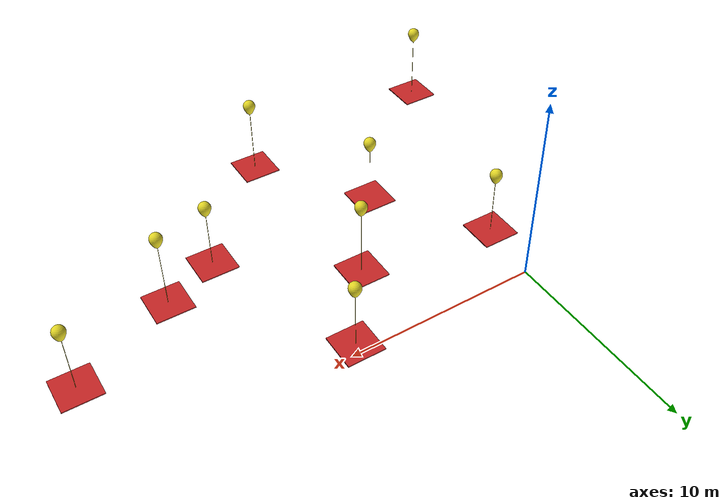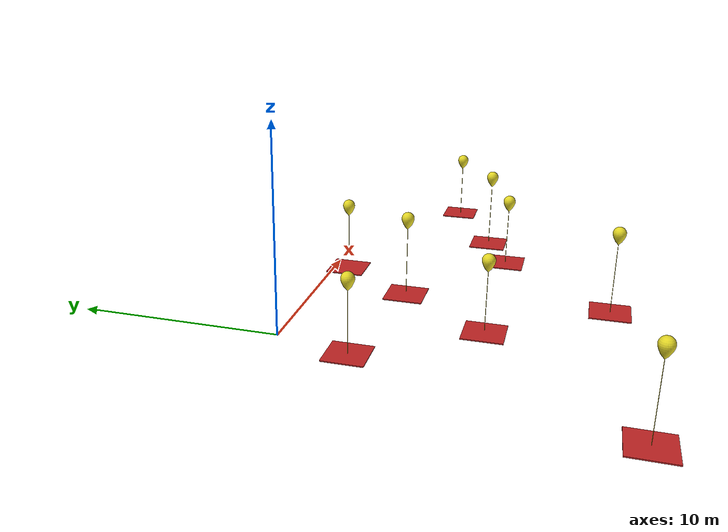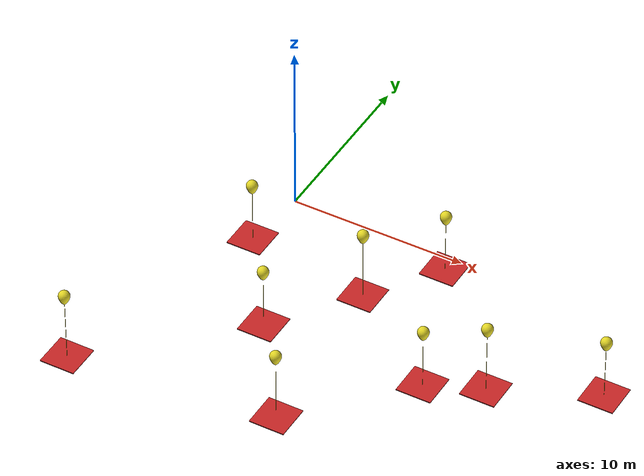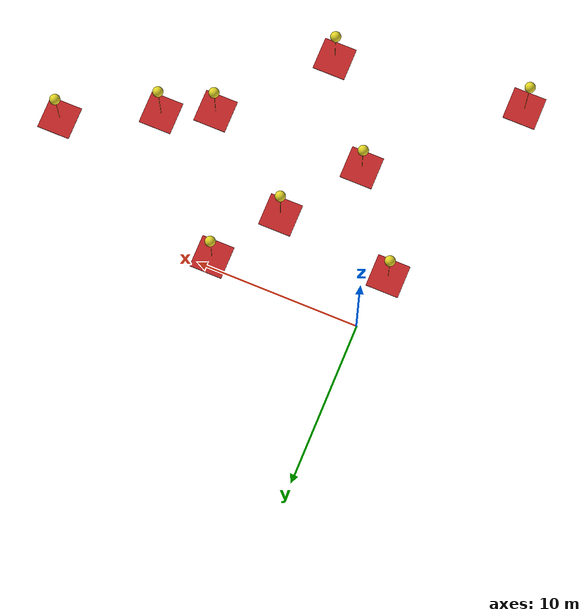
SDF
<sdf version="1.6">
 <world name="default">
  <model name="Balloon4.5m_clone_3">
   <link name="link_0">
    <pose>0 0 -0.025 0 -0 0</pose>
    <inertial>
     <mass>100</mass>
     <inertia>
      <ixx>0.166667</ixx>
      <ixy>0</ixy>
      <ixz>0</ixz>
      <iyy>0.166667</iyy>
      <iyz>0</iyz>
      <izz>0.166667</izz>
     </inertia>
    </inertial>
    <visual name="visual">
     <geometry><mesh><uri>/home/varun/MBZIRC_Arena/Balloon/Base.dae</uri><scale>1 1 1</scale></mesh></geometry>
     <material>
      <lighting>1</lighting>
      <script><uri>file://media/materials/scripts/gazebo.material</uri><name>Gazebo/Red</name></script>
      <shader type="vertex"><normal_map>__default__</normal_map></shader>
      <ambient>0.3 0.3 0.3 1</ambient>
      <diffuse>1 1 1 1</diffuse>
      <specular>0.1 0.1 0.1 1</specular>
      <emissive>0 0 0 1</emissive>
     </material>
    </visual>
    <collision name="collision">
     <geometry><mesh><uri>/home/varun/MBZIRC_Arena/Balloon/Base.dae</uri><scale>1 1 1</scale></mesh></geometry>
     <surface>
      <friction>
       <ode><mu>1</mu><mu2>1</mu2><fdir1>0 0 0</fdir1><slip1>0</slip1><slip2>0</slip2></ode>
       <torsional>
        <coefficient>1</coefficient>
        <patch_radius>0</patch_radius>
        <surface_radius>0</surface_radius>
        <use_patch_radius>1</use_patch_radius>
        <ode><slip>0</slip></ode>
       </torsional>
      </friction>
      <bounce><restitution_coefficient>0</restitution_coefficient><threshold>1e+06</threshold></bounce>
      <contact>
       <collide_without_contact>0</collide_without_contact>
       <collide_without_contact_bitmask>1</collide_without_contact_bitmask>
       <collide_bitmask>1</collide_bitmask>
       <ode>
        <soft_cfm>0</soft_cfm>
        <soft_erp>0.2</soft_erp>
        <kp>1e+13</kp>
        <kd>1</kd>
        <max_vel>0.01</max_vel>
        <min_depth>0</min_depth>
       </ode>
       <bullet>
        <split_impulse>1</split_impulse>
        <split_impulse_penetration_threshold>-0.01</split_impulse_penetration_threshold>
        <soft_cfm>0</soft_cfm>
        <soft_erp>0.2</soft_erp>
        <kp>1e+13</kp>
        <kd>1</kd>
       </bullet>
      </contact>
     </surface>
    </collision>
   </link>
   <link name="link_1">
    <pose>-0 -0 0.025 0 -0 0</pose>
    <inertial>
     <mass>0.2</mass>
     <inertia>
      <ixx>0.166667</ixx>
      <ixy>0</ixy>
      <ixz>0</ixz>
      <iyy>0.166667</iyy>
      <iyz>0</iyz>
      <izz>0.166667</izz>
     </inertia>
     <pose>0 0 4.5 0 -0 0</pose>
    </inertial>
    <visual name="visual">
     <geometry>
      <mesh><uri>/home/varun/MBZIRC_Arena/Balloon/Balloon4.5m.dae</uri><scale>1 1 1</scale></mesh>
     </geometry>
     <material>
      <lighting>1</lighting>
      <script><uri>file://media/materials/scripts/gazebo.material</uri><name>Gazebo/Yellow</name></script>
      <shader type="pixel"><normal_map>__default__</normal_map></shader>
      <ambient>0.3 0.3 0.3 1</ambient>
      <diffuse>0.7 0.7 0.7 1</diffuse>
      <specular>0.01 0.01 0.01 1</specular>
      <emissive>0 0 0 1</emissive>
     </material>
    </visual>
    <collision name="collision">
     <geometry>
      <mesh><uri>/home/varun/MBZIRC_Arena/Balloon/Balloon4.5m.dae</uri><scale>1 1 1</scale></mesh>
     </geometry>
     <surface>
      <friction>
       <ode><mu>1</mu><mu2>1</mu2><fdir1>0 0 0</fdir1><slip1>0</slip1><slip2>0</slip2></ode>
       <torsional>
        <coefficient>1</coefficient>
        <patch_radius>0</patch_radius>
        <surface_radius>0</surface_radius>
        <use_patch_radius>1</use_patch_radius>
        <ode><slip>0</slip></ode>
       </torsional>
      </friction>
      <bounce><restitution_coefficient>0</restitution_coefficient><threshold>1e+06</threshold></bounce>
      <contact>
       <collide_without_contact>0</collide_without_contact>
       <collide_without_contact_bitmask>1</collide_without_contact_bitmask>
       <collide_bitmask>1</collide_bitmask>
       <ode>
        <soft_cfm>0</soft_cfm>
        <soft_erp>0.2</soft_erp>
        <kp>1e+13</kp>
        <kd>1</kd>
        <max_vel>0.01</max_vel>
        <min_depth>0</min_depth>
       </ode>
       <bullet>
        <split_impulse>1</split_impulse>
        <split_impulse_penetration_threshold>-0.01</split_impulse_penetration_threshold>
        <soft_cfm>0</soft_cfm>
        <soft_erp>0.2</soft_erp>
        <kp>1e+13</kp>
        <kd>1</kd>
       </bullet>
      </contact>
     </surface>
    </collision>
   </link>
   <joint name="ball_joint" type="ball">
    <parent>link_0</parent>
    <child>link_1</child>
    <physics>
     <ode><limit><cfm>0</cfm><erp>0.2</erp></limit><suspension><cfm>0</cfm><erp>0.2</erp></suspension></ode>
    </physics>
   </joint>
   <static>0</static>
   <plugin name="wind_push" filename="libwind_push.so"/>
   <pose>6.65395 -4.54582 -0.132456 -0.000202 -0 0.00034</pose>
  </model>
  <model name="Balloon4.5m_clone_4">
   <link name="link_0">
    <pose>0 0 -0.025 0 -0 0</pose>
    <inertial>
     <mass>100</mass>
     <inertia>
      <ixx>0.166667</ixx>
      <ixy>0</ixy>
      <ixz>0</ixz>
      <iyy>0.166667</iyy>
      <iyz>0</iyz>
      <izz>0.166667</izz>
     </inertia>
    </inertial>
    <visual name="visual">
     <geometry><mesh><uri>/home/varun/MBZIRC_Arena/Balloon/Base.dae</uri><scale>1 1 1</scale></mesh></geometry>
     <material>
      <lighting>1</lighting>
      <script><uri>file://media/materials/scripts/gazebo.material</uri><name>Gazebo/Red</name></script>
      <shader type="vertex"><normal_map>__default__</normal_map></shader>
      <ambient>0.3 0.3 0.3 1</ambient>
      <diffuse>1 1 1 1</diffuse>
      <specular>0.1 0.1 0.1 1</specular>
      <emissive>0 0 0 1</emissive>
     </material>
    </visual>
    <collision name="collision">
     <geometry><mesh><uri>/home/varun/MBZIRC_Arena/Balloon/Base.dae</uri><scale>1 1 1</scale></mesh></geometry>
     <surface>
      <friction>
       <ode><mu>1</mu><mu2>1</mu2><fdir1>0 0 0</fdir1><slip1>0</slip1><slip2>0</slip2></ode>
       <torsional>
        <coefficient>1</coefficient>
        <patch_radius>0</patch_radius>
        <surface_radius>0</surface_radius>
        <use_patch_radius>1</use_patch_radius>
        <ode><slip>0</slip></ode>
       </torsional>
      </friction>
      <bounce><restitution_coefficient>0</restitution_coefficient><threshold>1e+06</threshold></bounce>
      <contact>
       <collide_without_contact>0</collide_without_contact>
       <collide_without_contact_bitmask>1</collide_without_contact_bitmask>
       <collide_bitmask>1</collide_bitmask>
       <ode>
        <soft_cfm>0</soft_cfm>
        <soft_erp>0.2</soft_erp>
        <kp>1e+13</kp>
        <kd>1</kd>
        <max_vel>0.01</max_vel>
        <min_depth>0</min_depth>
       </ode>
       <bullet>
        <split_impulse>1</split_impulse>
        <split_impulse_penetration_threshold>-0.01</split_impulse_penetration_threshold>
        <soft_cfm>0</soft_cfm>
        <soft_erp>0.2</soft_erp>
        <kp>1e+13</kp>
        <kd>1</kd>
       </bullet>
      </contact>
     </surface>
    </collision>
   </link>
   <link name="link_1">
    <pose>-0 -0 0.025 0 -0 0</pose>
    <inertial>
     <mass>0.2</mass>
     <inertia>
      <ixx>0.166667</ixx>
      <ixy>0</ixy>
      <ixz>0</ixz>
      <iyy>0.166667</iyy>
      <iyz>0</iyz>
      <izz>0.166667</izz>
     </inertia>
     <pose>0 0 4.5 0 -0 0</pose>
    </inertial>
    <visual name="visual">
     <geometry>
      <mesh><uri>/home/varun/MBZIRC_Arena/Balloon/Balloon4.5m.dae</uri><scale>1 1 1</scale></mesh>
     </geometry>
     <material>
      <lighting>1</lighting>
      <script><uri>file://media/materials/scripts/gazebo.material</uri><name>Gazebo/Yellow</name></script>
      <shader type="pixel"><normal_map>__default__</normal_map></shader>
      <ambient>0.3 0.3 0.3 1</ambient>
      <diffuse>0.7 0.7 0.7 1</diffuse>
      <specular>0.01 0.01 0.01 1</specular>
      <emissive>0 0 0 1</emissive>
     </material>
    </visual>
    <collision name="collision">
     <geometry>
      <mesh><uri>/home/varun/MBZIRC_Arena/Balloon/Balloon4.5m.dae</uri><scale>1 1 1</scale></mesh>
     </geometry>
     <surface>
      <friction>
       <ode><mu>1</mu><mu2>1</mu2><fdir1>0 0 0</fdir1><slip1>0</slip1><slip2>0</slip2></ode>
       <torsional>
        <coefficient>1</coefficient>
        <patch_radius>0</patch_radius>
        <surface_radius>0</surface_radius>
        <use_patch_radius>1</use_patch_radius>
        <ode><slip>0</slip></ode>
       </torsional>
      </friction>
      <bounce><restitution_coefficient>0</restitution_coefficient><threshold>1e+06</threshold></bounce>
      <contact>
       <collide_without_contact>0</collide_without_contact>
       <collide_without_contact_bitmask>1</collide_without_contact_bitmask>
       <collide_bitmask>1</collide_bitmask>
       <ode>
        <soft_cfm>0</soft_cfm>
        <soft_erp>0.2</soft_erp>
        <kp>1e+13</kp>
        <kd>1</kd>
        <max_vel>0.01</max_vel>
        <min_depth>0</min_depth>
       </ode>
       <bullet>
        <split_impulse>1</split_impulse>
        <split_impulse_penetration_threshold>-0.01</split_impulse_penetration_threshold>
        <soft_cfm>0</soft_cfm>
        <soft_erp>0.2</soft_erp>
        <kp>1e+13</kp>
        <kd>1</kd>
       </bullet>
      </contact>
     </surface>
    </collision>
   </link>
   <joint name="ball_joint" type="ball">
    <parent>link_0</parent>
    <child>link_1</child>
    <physics>
     <ode><limit><cfm>0</cfm><erp>0.2</erp></limit><suspension><cfm>0</cfm><erp>0.2</erp></suspension></ode>
    </physics>
   </joint>
   <static>0</static>
   <plugin name="wind_push" filename="libwind_push.so"/>
   <pose>7.34692 -14.6625 -0.132462 -0 0.000208 0.000306</pose>
  </model>
  <model name="Balloon4.5m_clone_5">
   <link name="link_0">
    <pose>0 0 -0.025 0 -0 0</pose>
    <inertial>
     <mass>100</mass>
     <inertia>
      <ixx>0.166667</ixx>
      <ixy>0</ixy>
      <ixz>0</ixz>
      <iyy>0.166667</iyy>
      <iyz>0</iyz>
      <izz>0.166667</izz>
     </inertia>
    </inertial>
    <visual name="visual">
     <geometry><mesh><uri>/home/varun/MBZIRC_Arena/Balloon/Base.dae</uri><scale>1 1 1</scale></mesh></geometry>
     <material>
      <lighting>1</lighting>
      <script><uri>file://media/materials/scripts/gazebo.material</uri><name>Gazebo/Red</name></script>
      <shader type="vertex"><normal_map>__default__</normal_map></shader>
      <ambient>0.3 0.3 0.3 1</ambient>
      <diffuse>1 1 1 1</diffuse>
      <specular>0.1 0.1 0.1 1</specular>
      <emissive>0 0 0 1</emissive>
     </material>
    </visual>
    <collision name="collision">
     <geometry><mesh><uri>/home/varun/MBZIRC_Arena/Balloon/Base.dae</uri><scale>1 1 1</scale></mesh></geometry>
     <surface>
      <friction>
       <ode><mu>1</mu><mu2>1</mu2><fdir1>0 0 0</fdir1><slip1>0</slip1><slip2>0</slip2></ode>
       <torsional>
        <coefficient>1</coefficient>
        <patch_radius>0</patch_radius>
        <surface_radius>0</surface_radius>
        <use_patch_radius>1</use_patch_radius>
        <ode><slip>0</slip></ode>
       </torsional>
      </friction>
      <bounce><restitution_coefficient>0</restitution_coefficient><threshold>1e+06</threshold></bounce>
      <contact>
       <collide_without_contact>0</collide_without_contact>
       <collide_without_contact_bitmask>1</collide_without_contact_bitmask>
       <collide_bitmask>1</collide_bitmask>
       <ode>
        <soft_cfm>0</soft_cfm>
        <soft_erp>0.2</soft_erp>
        <kp>1e+13</kp>
        <kd>1</kd>
        <max_vel>0.01</max_vel>
        <min_depth>0</min_depth>
       </ode>
       <bullet>
        <split_impulse>1</split_impulse>
        <split_impulse_penetration_threshold>-0.01</split_impulse_penetration_threshold>
        <soft_cfm>0</soft_cfm>
        <soft_erp>0.2</soft_erp>
        <kp>1e+13</kp>
        <kd>1</kd>
       </bullet>
      </contact>
     </surface>
    </collision>
   </link>
   <link name="link_1">
    <pose>-0 -0 0.025 0 -0 0</pose>
    <inertial>
     <mass>0.2</mass>
     <inertia>
      <ixx>0.166667</ixx>
      <ixy>0</ixy>
      <ixz>0</ixz>
      <iyy>0.166667</iyy>
      <iyz>0</iyz>
      <izz>0.166667</izz>
     </inertia>
     <pose>0 0 4.5 0 -0 0</pose>
    </inertial>
    <visual name="visual">
     <geometry>
      <mesh><uri>/home/varun/MBZIRC_Arena/Balloon/Balloon4.5m.dae</uri><scale>1 1 1</scale></mesh>
     </geometry>
     <material>
      <lighting>1</lighting>
      <script><uri>file://media/materials/scripts/gazebo.material</uri><name>Gazebo/Yellow</name></script>
      <shader type="pixel"><normal_map>__default__</normal_map></shader>
      <ambient>0.3 0.3 0.3 1</ambient>
      <diffuse>0.7 0.7 0.7 1</diffuse>
      <specular>0.01 0.01 0.01 1</specular>
      <emissive>0 0 0 1</emissive>
     </material>
    </visual>
    <collision name="collision">
     <geometry>
      <mesh><uri>/home/varun/MBZIRC_Arena/Balloon/Balloon4.5m.dae</uri><scale>1 1 1</scale></mesh>
     </geometry>
     <surface>
      <friction>
       <ode><mu>1</mu><mu2>1</mu2><fdir1>0 0 0</fdir1><slip1>0</slip1><slip2>0</slip2></ode>
       <torsional>
        <coefficient>1</coefficient>
        <patch_radius>0</patch_radius>
        <surface_radius>0</surface_radius>
        <use_patch_radius>1</use_patch_radius>
        <ode><slip>0</slip></ode>
       </torsional>
      </friction>
      <bounce><restitution_coefficient>0</restitution_coefficient><threshold>1e+06</threshold></bounce>
      <contact>
       <collide_without_contact>0</collide_without_contact>
       <collide_without_contact_bitmask>1</collide_without_contact_bitmask>
       <collide_bitmask>1</collide_bitmask>
       <ode>
        <soft_cfm>0</soft_cfm>
        <soft_erp>0.2</soft_erp>
        <kp>1e+13</kp>
        <kd>1</kd>
        <max_vel>0.01</max_vel>
        <min_depth>0</min_depth>
       </ode>
       <bullet>
        <split_impulse>1</split_impulse>
        <split_impulse_penetration_threshold>-0.01</split_impulse_penetration_threshold>
        <soft_cfm>0</soft_cfm>
        <soft_erp>0.2</soft_erp>
        <kp>1e+13</kp>
        <kd>1</kd>
       </bullet>
      </contact>
     </surface>
    </collision>
   </link>
   <joint name="ball_joint" type="ball">
    <parent>link_0</parent>
    <child>link_1</child>
    <physics>
     <ode><limit><cfm>0</cfm><erp>0.2</erp></limit><suspension><cfm>0</cfm><erp>0.2</erp></suspension></ode>
    </physics>
   </joint>
   <static>0</static>
   <plugin name="wind_push" filename="libwind_push.so"/>
   <pose>-4.21984 -16.0957 -0.13256 0 -0.000306 0.000338</pose>
  </model>
  <model name="Balloon4.5m_clone_9">
   <link name="link_0">
    <pose>0 0 -0.025 0 -0 0</pose>
    <inertial>
     <mass>100</mass>
     <inertia>
      <ixx>0.166667</ixx>
      <ixy>0</ixy>
      <ixz>0</ixz>
      <iyy>0.166667</iyy>
      <iyz>0</iyz>
      <izz>0.166667</izz>
     </inertia>
    </inertial>
    <visual name="visual">
     <geometry><mesh><uri>/home/varun/MBZIRC_Arena/Balloon/Base.dae</uri><scale>1 1 1</scale></mesh></geometry>
     <material>
      <lighting>1</lighting>
      <script><uri>file://media/materials/scripts/gazebo.material</uri><name>Gazebo/Red</name></script>
      <shader type="vertex"><normal_map>__default__</normal_map></shader>
      <ambient>0.3 0.3 0.3 1</ambient>
      <diffuse>1 1 1 1</diffuse>
      <specular>0.1 0.1 0.1 1</specular>
      <emissive>0 0 0 1</emissive>
     </material>
    </visual>
    <collision name="collision">
     <geometry><mesh><uri>/home/varun/MBZIRC_Arena/Balloon/Base.dae</uri><scale>1 1 1</scale></mesh></geometry>
     <surface>
      <friction>
       <ode><mu>1</mu><mu2>1</mu2><fdir1>0 0 0</fdir1><slip1>0</slip1><slip2>0</slip2></ode>
       <torsional>
        <coefficient>1</coefficient>
        <patch_radius>0</patch_radius>
        <surface_radius>0</surface_radius>
        <use_patch_radius>1</use_patch_radius>
        <ode><slip>0</slip></ode>
       </torsional>
      </friction>
      <bounce><restitution_coefficient>0</restitution_coefficient><threshold>1e+06</threshold></bounce>
      <contact>
       <collide_without_contact>0</collide_without_contact>
       <collide_without_contact_bitmask>1</collide_without_contact_bitmask>
       <collide_bitmask>1</collide_bitmask>
       <ode>
        <soft_cfm>0</soft_cfm>
        <soft_erp>0.2</soft_erp>
        <kp>1e+13</kp>
        <kd>1</kd>
        <max_vel>0.01</max_vel>
        <min_depth>0</min_depth>
       </ode>
       <bullet>
        <split_impulse>1</split_impulse>
        <split_impulse_penetration_threshold>-0.01</split_impulse_penetration_threshold>
        <soft_cfm>0</soft_cfm>
        <soft_erp>0.2</soft_erp>
        <kp>1e+13</kp>
        <kd>1</kd>
       </bullet>
      </contact>
     </surface>
    </collision>
   </link>
   <link name="link_1">
    <pose>-0 -0 0.025 0 -0 0</pose>
    <inertial>
     <mass>0.2</mass>
     <inertia>
      <ixx>0.166667</ixx>
      <ixy>0</ixy>
      <ixz>0</ixz>
      <iyy>0.166667</iyy>
      <iyz>0</iyz>
      <izz>0.166667</izz>
     </inertia>
     <pose>0 0 4.5 0 -0 0</pose>
    </inertial>
    <visual name="visual">
     <geometry>
      <mesh><uri>/home/varun/MBZIRC_Arena/Balloon/Balloon4.5m.dae</uri><scale>1 1 1</scale></mesh>
     </geometry>
     <material>
      <lighting>1</lighting>
      <script><uri>file://media/materials/scripts/gazebo.material</uri><name>Gazebo/Yellow</name></script>
      <shader type="pixel"><normal_map>__default__</normal_map></shader>
      <ambient>0.3 0.3 0.3 1</ambient>
      <diffuse>0.7 0.7 0.7 1</diffuse>
      <specular>0.01 0.01 0.01 1</specular>
      <emissive>0 0 0 1</emissive>
     </material>
    </visual>
    <collision name="collision">
     <geometry>
      <mesh><uri>/home/varun/MBZIRC_Arena/Balloon/Balloon4.5m.dae</uri><scale>1 1 1</scale></mesh>
     </geometry>
     <surface>
      <friction>
       <ode><mu>1</mu><mu2>1</mu2><fdir1>0 0 0</fdir1><slip1>0</slip1><slip2>0</slip2></ode>
       <torsional>
        <coefficient>1</coefficient>
        <patch_radius>0</patch_radius>
        <surface_radius>0</surface_radius>
        <use_patch_radius>1</use_patch_radius>
        <ode><slip>0</slip></ode>
       </torsional>
      </friction>
      <bounce><restitution_coefficient>0</restitution_coefficient><threshold>1e+06</threshold></bounce>
      <contact>
       <collide_without_contact>0</collide_without_contact>
       <collide_without_contact_bitmask>1</collide_without_contact_bitmask>
       <collide_bitmask>1</collide_bitmask>
       <ode>
        <soft_cfm>0</soft_cfm>
        <soft_erp>0.2</soft_erp>
        <kp>1e+13</kp>
        <kd>1</kd>
        <max_vel>0.01</max_vel>
        <min_depth>0</min_depth>
       </ode>
       <bullet>
        <split_impulse>1</split_impulse>
        <split_impulse_penetration_threshold>-0.01</split_impulse_penetration_threshold>
        <soft_cfm>0</soft_cfm>
        <soft_erp>0.2</soft_erp>
        <kp>1e+13</kp>
        <kd>1</kd>
       </bullet>
      </contact>
     </surface>
    </collision>
   </link>
   <joint name="ball_joint" type="ball">
    <parent>link_0</parent>
    <child>link_1</child>
    <physics>
     <ode><limit><cfm>0</cfm><erp>0.2</erp></limit><suspension><cfm>0</cfm><erp>0.2</erp></suspension></ode>
    </physics>
   </joint>
   <static>0</static>
   <plugin name="wind_push" filename="libwind_push.so"/>
   <pose>15.5951 -7.63559 -0.13254 0.000286 -0 0.000305</pose>
  </model>
  <model name="Balloon4m_clone_2">
   <link name="link_0">
    <pose>0 0 -0.025 0 -0 0</pose>
    <inertial>
     <mass>100</mass>
     <inertia>
      <ixx>0.166667</ixx>
      <ixy>0</ixy>
      <ixz>0</ixz>
      <iyy>0.166667</iyy>
      <iyz>0</iyz>
      <izz>0.166667</izz>
     </inertia>
    </inertial>
    <visual name="visual">
     <geometry><mesh><uri>/home/varun/MBZIRC_Arena/Balloon/Base.dae</uri><scale>1 1 1</scale></mesh></geometry>
     <material>
      <lighting>1</lighting>
      <script><uri>file://media/materials/scripts/gazebo.material</uri><name>Gazebo/Red</name></script>
      <shader type="vertex"><normal_map>__default__</normal_map></shader>
      <ambient>0.3 0.3 0.3 1</ambient>
      <diffuse>1 1 1 1</diffuse>
      <specular>0.1 0.1 0.1 1</specular>
      <emissive>0 0 0 1</emissive>
     </material>
    </visual>
    <collision name="collision">
     <geometry><mesh><uri>/home/varun/MBZIRC_Arena/Balloon/Base.dae</uri><scale>1 1 1</scale></mesh></geometry>
     <surface>
      <friction>
       <ode><mu>1</mu><mu2>1</mu2><fdir1>0 0 0</fdir1><slip1>0</slip1><slip2>0</slip2></ode>
       <torsional>
        <coefficient>1</coefficient>
        <patch_radius>0</patch_radius>
        <surface_radius>0</surface_radius>
        <use_patch_radius>1</use_patch_radius>
        <ode><slip>0</slip></ode>
       </torsional>
      </friction>
      <bounce><restitution_coefficient>0</restitution_coefficient><threshold>1e+06</threshold></bounce>
      <contact>
       <collide_without_contact>0</collide_without_contact>
       <collide_without_contact_bitmask>1</collide_without_contact_bitmask>
       <collide_bitmask>1</collide_bitmask>
       <ode>
        <soft_cfm>0</soft_cfm>
        <soft_erp>0.2</soft_erp>
        <kp>1e+13</kp>
        <kd>1</kd>
        <max_vel>0.01</max_vel>
        <min_depth>0</min_depth>
       </ode>
       <bullet>
        <split_impulse>1</split_impulse>
        <split_impulse_penetration_threshold>-0.01</split_impulse_penetration_threshold>
        <soft_cfm>0</soft_cfm>
        <soft_erp>0.2</soft_erp>
        <kp>1e+13</kp>
        <kd>1</kd>
       </bullet>
      </contact>
     </surface>
    </collision>
   </link>
   <link name="link_1">
    <pose>-0 -0 0.025 0 -0 0</pose>
    <inertial>
     <mass>0.2</mass>
     <inertia>
      <ixx>0.166667</ixx>
      <ixy>0</ixy>
      <ixz>0</ixz>
      <iyy>0.166667</iyy>
      <iyz>0</iyz>
      <izz>0.166667</izz>
     </inertia>
     <pose>0 0 4 0 -0 0</pose>
    </inertial>
    <visual name="visual">
     <geometry>
      <mesh><uri>/home/varun/MBZIRC_Arena/Balloon/Balloon4m.dae</uri><scale>1 1 1</scale></mesh>
     </geometry>
     <material>
      <lighting>1</lighting>
      <script><uri>file://media/materials/scripts/gazebo.material</uri><name>Gazebo/Yellow</name></script>
      <shader type="pixel"><normal_map>__default__</normal_map></shader>
      <ambient>0.3 0.3 0.3 1</ambient>
      <diffuse>0.7 0.7 0.7 1</diffuse>
      <specular>0.01 0.01 0.01 1</specular>
      <emissive>0 0 0 1</emissive>
     </material>
    </visual>
    <collision name="collision">
     <geometry>
      <mesh><uri>/home/varun/MBZIRC_Arena/Balloon/Balloon4m.dae</uri><scale>1 1 1</scale></mesh>
     </geometry>
     <surface>
      <friction>
       <ode><mu>1</mu><mu2>1</mu2><fdir1>0 0 0</fdir1><slip1>0</slip1><slip2>0</slip2></ode>
       <torsional>
        <coefficient>1</coefficient>
        <patch_radius>0</patch_radius>
        <surface_radius>0</surface_radius>
        <use_patch_radius>1</use_patch_radius>
        <ode><slip>0</slip></ode>
       </torsional>
      </friction>
      <bounce><restitution_coefficient>0</restitution_coefficient><threshold>1e+06</threshold></bounce>
      <contact>
       <collide_without_contact>0</collide_without_contact>
       <collide_without_contact_bitmask>1</collide_without_contact_bitmask>
       <collide_bitmask>1</collide_bitmask>
       <ode>
        <soft_cfm>0</soft_cfm>
        <soft_erp>0.2</soft_erp>
        <kp>1e+13</kp>
        <kd>1</kd>
        <max_vel>0.01</max_vel>
        <min_depth>0</min_depth>
       </ode>
       <bullet>
        <split_impulse>1</split_impulse>
        <split_impulse_penetration_threshold>-0.01</split_impulse_penetration_threshold>
        <soft_cfm>0</soft_cfm>
        <soft_erp>0.2</soft_erp>
        <kp>1e+13</kp>
        <kd>1</kd>
       </bullet>
      </contact>
     </surface>
    </collision>
   </link>
   <joint name="ball_joint" type="ball">
    <parent>link_0</parent>
    <child>link_1</child>
    <physics>
     <ode><limit><cfm>0</cfm><erp>0.2</erp></limit><suspension><cfm>0</cfm><erp>0.2</erp></suspension></ode>
    </physics>
   </joint>
   <static>0</static>
   <plugin name="wind_push" filename="libwind_push.so"/>
   <pose>-0.565626 -3.51806 -0.132387 -0.000249 -0 5.8e-05</pose>
  </model>
  <model name="Balloon4m_clone_4">
   <link name="link_0">
    <pose>0 0 -0.025 0 -0 0</pose>
    <inertial>
     <mass>100</mass>
     <inertia>
      <ixx>0.166667</ixx>
      <ixy>0</ixy>
      <ixz>0</ixz>
      <iyy>0.166667</iyy>
      <iyz>0</iyz>
      <izz>0.166667</izz>
     </inertia>
    </inertial>
    <visual name="visual">
     <geometry><mesh><uri>/home/varun/MBZIRC_Arena/Balloon/Base.dae</uri><scale>1 1 1</scale></mesh></geometry>
     <material>
      <lighting>1</lighting>
      <script><uri>file://media/materials/scripts/gazebo.material</uri><name>Gazebo/Red</name></script>
      <shader type="vertex"><normal_map>__default__</normal_map></shader>
      <ambient>0.3 0.3 0.3 1</ambient>
      <diffuse>1 1 1 1</diffuse>
      <specular>0.1 0.1 0.1 1</specular>
      <emissive>0 0 0 1</emissive>
     </material>
    </visual>
    <collision name="collision">
     <geometry><mesh><uri>/home/varun/MBZIRC_Arena/Balloon/Base.dae</uri><scale>1 1 1</scale></mesh></geometry>
     <surface>
      <friction>
       <ode><mu>1</mu><mu2>1</mu2><fdir1>0 0 0</fdir1><slip1>0</slip1><slip2>0</slip2></ode>
       <torsional>
        <coefficient>1</coefficient>
        <patch_radius>0</patch_radius>
        <surface_radius>0</surface_radius>
        <use_patch_radius>1</use_patch_radius>
        <ode><slip>0</slip></ode>
       </torsional>
      </friction>
      <bounce><restitution_coefficient>0</restitution_coefficient><threshold>1e+06</threshold></bounce>
      <contact>
       <collide_without_contact>0</collide_without_contact>
       <collide_without_contact_bitmask>1</collide_without_contact_bitmask>
       <collide_bitmask>1</collide_bitmask>
       <ode>
        <soft_cfm>0</soft_cfm>
        <soft_erp>0.2</soft_erp>
        <kp>1e+13</kp>
        <kd>1</kd>
        <max_vel>0.01</max_vel>
        <min_depth>0</min_depth>
       </ode>
       <bullet>
        <split_impulse>1</split_impulse>
        <split_impulse_penetration_threshold>-0.01</split_impulse_penetration_threshold>
        <soft_cfm>0</soft_cfm>
        <soft_erp>0.2</soft_erp>
        <kp>1e+13</kp>
        <kd>1</kd>
       </bullet>
      </contact>
     </surface>
    </collision>
   </link>
   <link name="link_1">
    <pose>-0 -0 0.025 0 -0 0</pose>
    <inertial>
     <mass>0.2</mass>
     <inertia>
      <ixx>0.166667</ixx>
      <ixy>0</ixy>
      <ixz>0</ixz>
      <iyy>0.166667</iyy>
      <iyz>0</iyz>
      <izz>0.166667</izz>
     </inertia>
     <pose>0 0 4 0 -0 0</pose>
    </inertial>
    <visual name="visual">
     <geometry>
      <mesh><uri>/home/varun/MBZIRC_Arena/Balloon/Balloon4m.dae</uri><scale>1 1 1</scale></mesh>
     </geometry>
     <material>
      <lighting>1</lighting>
      <script><uri>file://media/materials/scripts/gazebo.material</uri><name>Gazebo/Yellow</name></script>
      <shader type="pixel"><normal_map>__default__</normal_map></shader>
      <ambient>0.3 0.3 0.3 1</ambient>
      <diffuse>0.7 0.7 0.7 1</diffuse>
      <specular>0.01 0.01 0.01 1</specular>
      <emissive>0 0 0 1</emissive>
     </material>
    </visual>
    <collision name="collision">
     <geometry>
      <mesh><uri>/home/varun/MBZIRC_Arena/Balloon/Balloon4m.dae</uri><scale>1 1 1</scale></mesh>
     </geometry>
     <surface>
      <friction>
       <ode><mu>1</mu><mu2>1</mu2><fdir1>0 0 0</fdir1><slip1>0</slip1><slip2>0</slip2></ode>
       <torsional>
        <coefficient>1</coefficient>
        <patch_radius>0</patch_radius>
        <surface_radius>0</surface_radius>
        <use_patch_radius>1</use_patch_radius>
        <ode><slip>0</slip></ode>
       </torsional>
      </friction>
      <bounce><restitution_coefficient>0</restitution_coefficient><threshold>1e+06</threshold></bounce>
      <contact>
       <collide_without_contact>0</collide_without_contact>
       <collide_without_contact_bitmask>1</collide_without_contact_bitmask>
       <collide_bitmask>1</collide_bitmask>
       <ode>
        <soft_cfm>0</soft_cfm>
        <soft_erp>0.2</soft_erp>
        <kp>1e+13</kp>
        <kd>1</kd>
        <max_vel>0.01</max_vel>
        <min_depth>0</min_depth>
       </ode>
       <bullet>
        <split_impulse>1</split_impulse>
        <split_impulse_penetration_threshold>-0.01</split_impulse_penetration_threshold>
        <soft_cfm>0</soft_cfm>
        <soft_erp>0.2</soft_erp>
        <kp>1e+13</kp>
        <kd>1</kd>
       </bullet>
      </contact>
     </surface>
    </collision>
   </link>
   <joint name="ball_joint" type="ball">
    <parent>link_0</parent>
    <child>link_1</child>
    <physics>
     <ode><limit><cfm>0</cfm><erp>0.2</erp></limit><suspension><cfm>0</cfm><erp>0.2</erp></suspension></ode>
    </physics>
   </joint>
   <static>0</static>
   <plugin name="wind_push" filename="libwind_push.so"/>
   <pose>3.32319 -9.03403 -0.13236 -0 0.000198 -0.000115</pose>
  </model>
  <model name="Balloon4m_clone_5">
   <link name="link_0">
    <pose>0 0 -0.025 0 -0 0</pose>
    <inertial>
     <mass>100</mass>
     <inertia>
      <ixx>0.166667</ixx>
      <ixy>0</ixy>
      <ixz>0</ixz>
      <iyy>0.166667</iyy>
      <iyz>0</iyz>
      <izz>0.166667</izz>
     </inertia>
    </inertial>
    <visual name="visual">
     <geometry><mesh><uri>/home/varun/MBZIRC_Arena/Balloon/Base.dae</uri><scale>1 1 1</scale></mesh></geometry>
     <material>
      <lighting>1</lighting>
      <script><uri>file://media/materials/scripts/gazebo.material</uri><name>Gazebo/Red</name></script>
      <shader type="vertex"><normal_map>__default__</normal_map></shader>
      <ambient>0.3 0.3 0.3 1</ambient>
      <diffuse>1 1 1 1</diffuse>
      <specular>0.1 0.1 0.1 1</specular>
      <emissive>0 0 0 1</emissive>
     </material>
    </visual>
    <collision name="collision">
     <geometry><mesh><uri>/home/varun/MBZIRC_Arena/Balloon/Base.dae</uri><scale>1 1 1</scale></mesh></geometry>
     <surface>
      <friction>
       <ode><mu>1</mu><mu2>1</mu2><fdir1>0 0 0</fdir1><slip1>0</slip1><slip2>0</slip2></ode>
       <torsional>
        <coefficient>1</coefficient>
        <patch_radius>0</patch_radius>
        <surface_radius>0</surface_radius>
        <use_patch_radius>1</use_patch_radius>
        <ode><slip>0</slip></ode>
       </torsional>
      </friction>
      <bounce><restitution_coefficient>0</restitution_coefficient><threshold>1e+06</threshold></bounce>
      <contact>
       <collide_without_contact>0</collide_without_contact>
       <collide_without_contact_bitmask>1</collide_without_contact_bitmask>
       <collide_bitmask>1</collide_bitmask>
       <ode>
        <soft_cfm>0</soft_cfm>
        <soft_erp>0.2</soft_erp>
        <kp>1e+13</kp>
        <kd>1</kd>
        <max_vel>0.01</max_vel>
        <min_depth>0</min_depth>
       </ode>
       <bullet>
        <split_impulse>1</split_impulse>
        <split_impulse_penetration_threshold>-0.01</split_impulse_penetration_threshold>
        <soft_cfm>0</soft_cfm>
        <soft_erp>0.2</soft_erp>
        <kp>1e+13</kp>
        <kd>1</kd>
       </bullet>
      </contact>
     </surface>
    </collision>
   </link>
   <link name="link_1">
    <pose>-0 -0 0.025 0 -0 0</pose>
    <inertial>
     <mass>0.2</mass>
     <inertia>
      <ixx>0.166667</ixx>
      <ixy>0</ixy>
      <ixz>0</ixz>
      <iyy>0.166667</iyy>
      <iyz>0</iyz>
      <izz>0.166667</izz>
     </inertia>
     <pose>0 0 4 0 -0 0</pose>
    </inertial>
    <visual name="visual">
     <geometry>
      <mesh><uri>/home/varun/MBZIRC_Arena/Balloon/Balloon4m.dae</uri><scale>1 1 1</scale></mesh>
     </geometry>
     <material>
      <lighting>1</lighting>
      <script><uri>file://media/materials/scripts/gazebo.material</uri><name>Gazebo/Yellow</name></script>
      <shader type="pixel"><normal_map>__default__</normal_map></shader>
      <ambient>0.3 0.3 0.3 1</ambient>
      <diffuse>0.7 0.7 0.7 1</diffuse>
      <specular>0.01 0.01 0.01 1</specular>
      <emissive>0 0 0 1</emissive>
     </material>
    </visual>
    <collision name="collision">
     <geometry>
      <mesh><uri>/home/varun/MBZIRC_Arena/Balloon/Balloon4m.dae</uri><scale>1 1 1</scale></mesh>
     </geometry>
     <surface>
      <friction>
       <ode><mu>1</mu><mu2>1</mu2><fdir1>0 0 0</fdir1><slip1>0</slip1><slip2>0</slip2></ode>
       <torsional>
        <coefficient>1</coefficient>
        <patch_radius>0</patch_radius>
        <surface_radius>0</surface_radius>
        <use_patch_radius>1</use_patch_radius>
        <ode><slip>0</slip></ode>
       </torsional>
      </friction>
      <bounce><restitution_coefficient>0</restitution_coefficient><threshold>1e+06</threshold></bounce>
      <contact>
       <collide_without_contact>0</collide_without_contact>
       <collide_without_contact_bitmask>1</collide_without_contact_bitmask>
       <collide_bitmask>1</collide_bitmask>
       <ode>
        <soft_cfm>0</soft_cfm>
        <soft_erp>0.2</soft_erp>
        <kp>1e+13</kp>
        <kd>1</kd>
        <max_vel>0.01</max_vel>
        <min_depth>0</min_depth>
       </ode>
       <bullet>
        <split_impulse>1</split_impulse>
        <split_impulse_penetration_threshold>-0.01</split_impulse_penetration_threshold>
        <soft_cfm>0</soft_cfm>
        <soft_erp>0.2</soft_erp>
        <kp>1e+13</kp>
        <kd>1</kd>
       </bullet>
      </contact>
     </surface>
    </collision>
   </link>
   <joint name="ball_joint" type="ball">
    <parent>link_0</parent>
    <child>link_1</child>
    <physics>
     <ode><limit><cfm>0</cfm><erp>0.2</erp></limit><suspension><cfm>0</cfm><erp>0.2</erp></suspension></ode>
    </physics>
   </joint>
   <static>0</static>
   <plugin name="wind_push" filename="libwind_push.so"/>
   <pose>9.39394 -0.662869 -0.132482 0 0.000425 -0.000193</pose>
  </model>
  <model name="Balloon4m_clone_7">
   <link name="link_0">
    <pose>0 0 -0.025 0 -0 0</pose>
    <inertial>
     <mass>100</mass>
     <inertia>
      <ixx>0.166667</ixx>
      <ixy>0</ixy>
      <ixz>0</ixz>
      <iyy>0.166667</iyy>
      <iyz>0</iyz>
      <izz>0.166667</izz>
     </inertia>
    </inertial>
    <visual name="visual">
     <geometry><mesh><uri>/home/varun/MBZIRC_Arena/Balloon/Base.dae</uri><scale>1 1 1</scale></mesh></geometry>
     <material>
      <lighting>1</lighting>
      <script><uri>file://media/materials/scripts/gazebo.material</uri><name>Gazebo/Red</name></script>
      <shader type="vertex"><normal_map>__default__</normal_map></shader>
      <ambient>0.3 0.3 0.3 1</ambient>
      <diffuse>1 1 1 1</diffuse>
      <specular>0.1 0.1 0.1 1</specular>
      <emissive>0 0 0 1</emissive>
     </material>
    </visual>
    <collision name="collision">
     <geometry><mesh><uri>/home/varun/MBZIRC_Arena/Balloon/Base.dae</uri><scale>1 1 1</scale></mesh></geometry>
     <surface>
      <friction>
       <ode><mu>1</mu><mu2>1</mu2><fdir1>0 0 0</fdir1><slip1>0</slip1><slip2>0</slip2></ode>
       <torsional>
        <coefficient>1</coefficient>
        <patch_radius>0</patch_radius>
        <surface_radius>0</surface_radius>
        <use_patch_radius>1</use_patch_radius>
        <ode><slip>0</slip></ode>
       </torsional>
      </friction>
      <bounce><restitution_coefficient>0</restitution_coefficient><threshold>1e+06</threshold></bounce>
      <contact>
       <collide_without_contact>0</collide_without_contact>
       <collide_without_contact_bitmask>1</collide_without_contact_bitmask>
       <collide_bitmask>1</collide_bitmask>
       <ode>
        <soft_cfm>0</soft_cfm>
        <soft_erp>0.2</soft_erp>
        <kp>1e+13</kp>
        <kd>1</kd>
        <max_vel>0.01</max_vel>
        <min_depth>0</min_depth>
       </ode>
       <bullet>
        <split_impulse>1</split_impulse>
        <split_impulse_penetration_threshold>-0.01</split_impulse_penetration_threshold>
        <soft_cfm>0</soft_cfm>
        <soft_erp>0.2</soft_erp>
        <kp>1e+13</kp>
        <kd>1</kd>
       </bullet>
      </contact>
     </surface>
    </collision>
   </link>
   <link name="link_1">
    <pose>-0 -0 0.025 0 -0 0</pose>
    <inertial>
     <mass>0.2</mass>
     <inertia>
      <ixx>0.166667</ixx>
      <ixy>0</ixy>
      <ixz>0</ixz>
      <iyy>0.166667</iyy>
      <iyz>0</iyz>
      <izz>0.166667</izz>
     </inertia>
     <pose>0 0 4 0 -0 0</pose>
    </inertial>
    <visual name="visual">
     <geometry>
      <mesh><uri>/home/varun/MBZIRC_Arena/Balloon/Balloon4m.dae</uri><scale>1 1 1</scale></mesh>
     </geometry>
     <material>
      <lighting>1</lighting>
      <script><uri>file://media/materials/scripts/gazebo.material</uri><name>Gazebo/Yellow</name></script>
      <shader type="pixel"><normal_map>__default__</normal_map></shader>
      <ambient>0.3 0.3 0.3 1</ambient>
      <diffuse>0.7 0.7 0.7 1</diffuse>
      <specular>0.01 0.01 0.01 1</specular>
      <emissive>0 0 0 1</emissive>
     </material>
    </visual>
    <collision name="collision">
     <geometry>
      <mesh><uri>/home/varun/MBZIRC_Arena/Balloon/Balloon4m.dae</uri><scale>1 1 1</scale></mesh>
     </geometry>
     <surface>
      <friction>
       <ode><mu>1</mu><mu2>1</mu2><fdir1>0 0 0</fdir1><slip1>0</slip1><slip2>0</slip2></ode>
       <torsional>
        <coefficient>1</coefficient>
        <patch_radius>0</patch_radius>
        <surface_radius>0</surface_radius>
        <use_patch_radius>1</use_patch_radius>
        <ode><slip>0</slip></ode>
       </torsional>
      </friction>
      <bounce><restitution_coefficient>0</restitution_coefficient><threshold>1e+06</threshold></bounce>
      <contact>
       <collide_without_contact>0</collide_without_contact>
       <collide_without_contact_bitmask>1</collide_without_contact_bitmask>
       <collide_bitmask>1</collide_bitmask>
       <ode>
        <soft_cfm>0</soft_cfm>
        <soft_erp>0.2</soft_erp>
        <kp>1e+13</kp>
        <kd>1</kd>
        <max_vel>0.01</max_vel>
        <min_depth>0</min_depth>
       </ode>
       <bullet>
        <split_impulse>1</split_impulse>
        <split_impulse_penetration_threshold>-0.01</split_impulse_penetration_threshold>
        <soft_cfm>0</soft_cfm>
        <soft_erp>0.2</soft_erp>
        <kp>1e+13</kp>
        <kd>1</kd>
       </bullet>
      </contact>
     </surface>
    </collision>
   </link>
   <joint name="ball_joint" type="ball">
    <parent>link_0</parent>
    <child>link_1</child>
    <physics>
     <ode><limit><cfm>0</cfm><erp>0.2</erp></limit><suspension><cfm>0</cfm><erp>0.2</erp></suspension></ode>
    </physics>
   </joint>
   <static>0</static>
   <plugin name="wind_push" filename="libwind_push.so"/>
   <pose>21.0275 -5.07002 -0.132468 -0 -0.000214 1.2e-05</pose>
  </model>
  <model name="Balloon5m_clone_4">
   <link name="link_0">
    <pose>0 0 -0.025 0 -0 0</pose>
    <inertial>
     <mass>100</mass>
     <inertia>
      <ixx>0.166667</ixx>
      <ixy>0</ixy>
      <ixz>0</ixz>
      <iyy>0.166667</iyy>
      <iyz>0</iyz>
      <izz>0.166667</izz>
     </inertia>
    </inertial>
    <visual name="visual">
     <geometry><mesh><uri>/home/varun/MBZIRC_Arena/Balloon/Base.dae</uri><scale>1 1 1</scale></mesh></geometry>
     <material>
      <lighting>1</lighting>
      <script><uri>file://media/materials/scripts/gazebo.material</uri><name>Gazebo/Red</name></script>
      <shader type="vertex"><normal_map>__default__</normal_map></shader>
      <ambient>0.3 0.3 0.3 1</ambient>
      <diffuse>1 1 1 1</diffuse>
      <specular>0.1 0.1 0.1 1</specular>
      <emissive>0 0 0 1</emissive>
     </material>
    </visual>
    <collision name="collision">
     <geometry><mesh><uri>/home/varun/MBZIRC_Arena/Balloon/Base.dae</uri><scale>1 1 1</scale></mesh></geometry>
     <surface>
      <friction>
       <ode><mu>1</mu><mu2>1</mu2><fdir1>0 0 0</fdir1><slip1>0</slip1><slip2>0</slip2></ode>
       <torsional>
        <coefficient>1</coefficient>
        <patch_radius>0</patch_radius>
        <surface_radius>0</surface_radius>
        <use_patch_radius>1</use_patch_radius>
        <ode><slip>0</slip></ode>
       </torsional>
      </friction>
      <bounce><restitution_coefficient>0</restitution_coefficient><threshold>1e+06</threshold></bounce>
      <contact>
       <collide_without_contact>0</collide_without_contact>
       <collide_without_contact_bitmask>1</collide_without_contact_bitmask>
       <collide_bitmask>1</collide_bitmask>
       <ode>
        <soft_cfm>0</soft_cfm>
        <soft_erp>0.2</soft_erp>
        <kp>1e+13</kp>
        <kd>1</kd>
        <max_vel>0.01</max_vel>
        <min_depth>0</min_depth>
       </ode>
       <bullet>
        <split_impulse>1</split_impulse>
        <split_impulse_penetration_threshold>-0.01</split_impulse_penetration_threshold>
        <soft_cfm>0</soft_cfm>
        <soft_erp>0.2</soft_erp>
        <kp>1e+13</kp>
        <kd>1</kd>
       </bullet>
      </contact>
     </surface>
    </collision>
   </link>
   <link name="link_1">
    <pose>-0 -0 0.025 0 -0 0</pose>
    <inertial>
     <mass>0.2</mass>
     <inertia>
      <ixx>0.166667</ixx>
      <ixy>0</ixy>
      <ixz>0</ixz>
      <iyy>0.166667</iyy>
      <iyz>0</iyz>
      <izz>0.166667</izz>
     </inertia>
     <pose>0 0 5 0 -0 0</pose>
    </inertial>
    <visual name="visual">
     <geometry>
      <mesh><uri>/home/varun/MBZIRC_Arena/Balloon/Balloon5m.dae</uri><scale>1 1 1</scale></mesh>
     </geometry>
     <material>
      <lighting>1</lighting>
      <script><uri>file://media/materials/scripts/gazebo.material</uri><name>Gazebo/Yellow</name></script>
      <shader type="pixel"><normal_map>__default__</normal_map></shader>
      <ambient>0.3 0.3 0.3 1</ambient>
      <diffuse>0.7 0.7 0.7 1</diffuse>
      <specular>0.01 0.01 0.01 1</specular>
      <emissive>0 0 0 1</emissive>
     </material>
    </visual>
    <collision name="collision">
     <geometry>
      <mesh><uri>/home/varun/MBZIRC_Arena/Balloon/Balloon5m.dae</uri><scale>1 1 1</scale></mesh>
     </geometry>
     <surface>
      <friction>
       <ode><mu>1</mu><mu2>1</mu2><fdir1>0 0 0</fdir1><slip1>0</slip1><slip2>0</slip2></ode>
       <torsional>
        <coefficient>1</coefficient>
        <patch_radius>0</patch_radius>
        <surface_radius>0</surface_radius>
        <use_patch_radius>1</use_patch_radius>
        <ode><slip>0</slip></ode>
       </torsional>
      </friction>
      <bounce><restitution_coefficient>0</restitution_coefficient><threshold>1e+06</threshold></bounce>
      <contact>
       <collide_without_contact>0</collide_without_contact>
       <collide_without_contact_bitmask>1</collide_without_contact_bitmask>
       <collide_bitmask>1</collide_bitmask>
       <ode>
        <soft_cfm>0</soft_cfm>
        <soft_erp>0.2</soft_erp>
        <kp>1e+13</kp>
        <kd>1</kd>
        <max_vel>0.01</max_vel>
        <min_depth>0</min_depth>
       </ode>
       <bullet>
        <split_impulse>1</split_impulse>
        <split_impulse_penetration_threshold>-0.01</split_impulse_penetration_threshold>
        <soft_cfm>0</soft_cfm>
        <soft_erp>0.2</soft_erp>
        <kp>1e+13</kp>
        <kd>1</kd>
       </bullet>
      </contact>
     </surface>
    </collision>
   </link>
   <joint name="ball_joint" type="ball">
    <parent>link_0</parent>
    <child>link_1</child>
    <physics>
     <ode><limit><cfm>0</cfm><erp>0.2</erp></limit><suspension><cfm>0</cfm><erp>0.2</erp></suspension></ode>
    </physics>
   </joint>
   <static>0</static>
   <plugin name="wind_push" filename="libwind_push.so"/>
   <pose>12.6478 -8.96324 -0.132561 0 -0.000307 -7.4e-05</pose>
  </model>
 </world>
</sdf>
